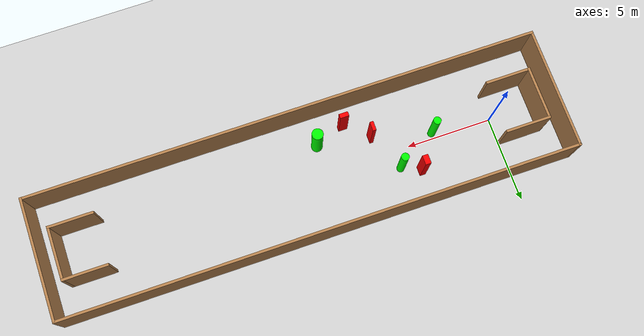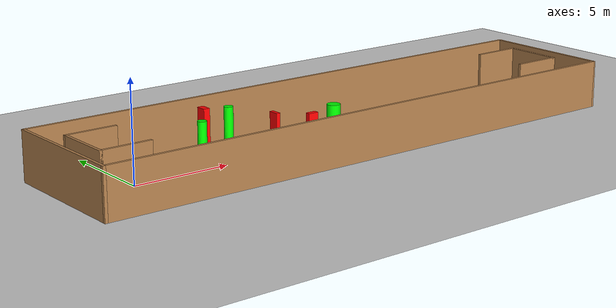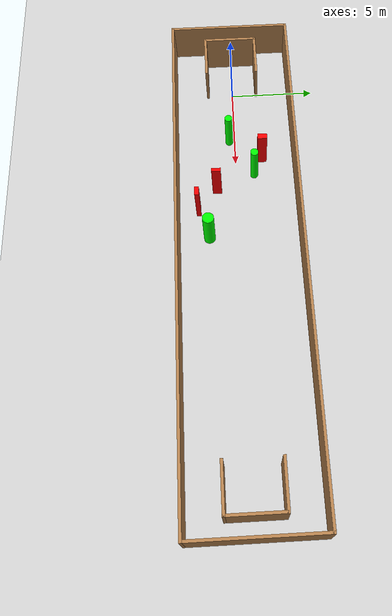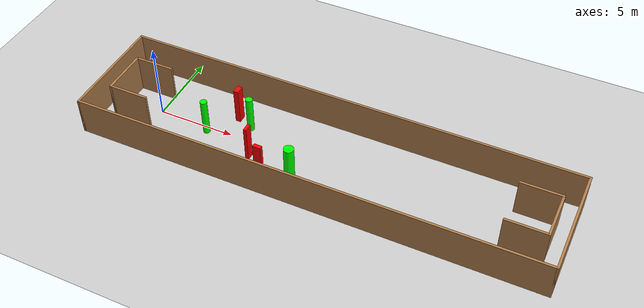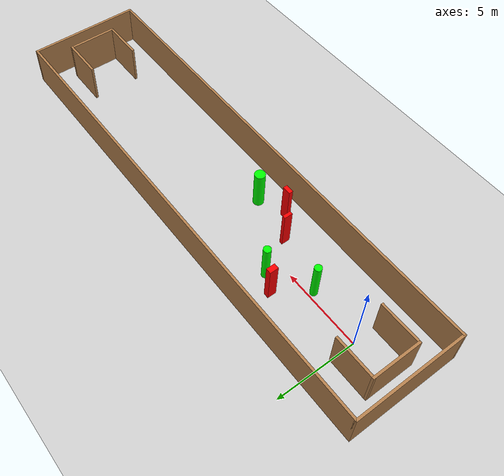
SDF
<sdf version="1.7">
 <world name="default">
  <light name="sun" type="directional">
   <pose>0 0 10 0 -0 0</pose>
   <diffuse>0.8 0.8 0.8 1</diffuse>
   <specular>0.2 0.2 0.2 1</specular>
   <attenuation>
    <range>1000</range>
    <constant>0.9</constant>
    <linear>0.01</linear>
    <quadratic>0.001</quadratic>
   </attenuation>
   <direction>-0.5 0.1 -0.9</direction>
   <spot><inner_angle>0</inner_angle><outer_angle>0</outer_angle><falloff>0</falloff></spot>
  </light>
  <model name="ground_plane">
   <static>1</static>
   <link name="link">
    <collision name="collision">
     <geometry><plane><normal>0 0 1</normal><size>100 100</size></plane></geometry>
     <surface>
      <contact><collide_bitmask>65535</collide_bitmask></contact>
      <friction><ode><mu>100</mu><mu2>50</mu2></ode></friction>
     </surface>
    </collision>
    <visual name="visual">
     <cast_shadows>0</cast_shadows>
     <geometry><plane><normal>0 0 1</normal><size>100 100</size></plane></geometry>
     <material>
      <script><uri>file://media/materials/scripts/gazebo.material</uri><name>Gazebo/Grey</name></script>
     </material>
    </visual>
   </link>
  </model>
  <gravity>0 0 -9.8</gravity>
  <magnetic_field>6e-06 2.3e-05 -4.2e-05</magnetic_field>
  <atmosphere type="adiabatic"/>
  <physics type="ode">
   <max_step_size>0.001</max_step_size>
   <real_time_factor>1</real_time_factor>
   <real_time_update_rate>1000</real_time_update_rate>
  </physics>
  <scene><ambient>0.4 0.4 0.4 1</ambient><background>0.7 0.7 0.7 1</background><shadows>1</shadows></scene>
  <spherical_coordinates>
   <surface_model>EARTH_WGS84</surface_model>
   <latitude_deg>0</latitude_deg>
   <longitude_deg>0</longitude_deg>
   <elevation>0</elevation>
   <heading_deg>0</heading_deg>
  </spherical_coordinates>
  <model name="my_base_walls">
   <link name="Wall_0">
    <collision name="Wall_0_Collision">
     <geometry><box><size>7.15 0.15 2.5</size></box></geometry>
     <pose>0 0 1.25 0 -0 0</pose>
    </collision>
    <visual name="Wall_0_Visual">
     <pose>0 0 1.25 0 -0 0</pose>
     <geometry><box><size>7.15 0.15 2.5</size></box></geometry>
     <material>
      <script><uri>file://media/materials/scripts/gazebo.material</uri><name>Gazebo/Wood</name></script>
      <ambient>1 1 1 1</ambient>
     </material>
     <meta><layer>0</layer></meta>
    </visual>
    <pose>-15 0 0 0 -0 1.5708</pose>
   </link>
   <link name="Wall_10">
    <collision name="Wall_10_Collision">
     <geometry><box><size>2.65 0.15 2.5</size></box></geometry>
     <pose>0 0 1.25 0 -0 0</pose>
    </collision>
    <visual name="Wall_10_Visual">
     <pose>0 0 1.25 0 -0 0</pose>
     <geometry><box><size>2.65 0.15 2.5</size></box></geometry>
     <material>
      <script><uri>file://media/materials/scripts/gazebo.material</uri><name>Gazebo/Wood</name></script>
      <ambient>1 1 1 1</ambient>
     </material>
     <meta><layer>0</layer></meta>
    </visual>
    <pose>-12.75 -1.5 0 0 -0 0</pose>
   </link>
   <link name="Wall_12">
    <collision name="Wall_12_Collision">
     <geometry><box><size>2.65 0.15 2.5</size></box></geometry>
     <pose>0 0 1.25 0 -0 0</pose>
    </collision>
    <visual name="Wall_12_Visual">
     <pose>0 0 1.25 0 -0 0</pose>
     <geometry><box><size>2.65 0.15 2.5</size></box></geometry>
     <material>
      <script><uri>file://media/materials/scripts/gazebo.material</uri><name>Gazebo/Wood</name></script>
      <ambient>1 1 1 1</ambient>
     </material>
     <meta><layer>0</layer></meta>
    </visual>
    <pose>-12.75 1.5 0 0 -0 0</pose>
   </link>
   <link name="Wall_14">
    <collision name="Wall_14_Collision">
     <geometry><box><size>3.15 0.15 2.5</size></box></geometry>
     <pose>0 0 1.25 0 -0 0</pose>
    </collision>
    <visual name="Wall_14_Visual">
     <pose>0 0 1.25 0 -0 0</pose>
     <geometry><box><size>3.15 0.15 2.5</size></box></geometry>
     <material>
      <script><uri>file://media/materials/scripts/gazebo.material</uri><name>Gazebo/Wood</name></script>
      <ambient>1 1 1 1</ambient>
     </material>
     <meta><layer>0</layer></meta>
    </visual>
    <pose>14 0 0 0 -0 -1.5708</pose>
   </link>
   <link name="Wall_15">
    <collision name="Wall_15_Collision">
     <geometry><box><size>2.65 0.15 2.5</size></box></geometry>
     <pose>0 0 1.25 0 -0 0</pose>
    </collision>
    <visual name="Wall_15_Visual">
     <pose>0 0 1.25 0 -0 0</pose>
     <geometry><box><size>2.65 0.15 2.5</size></box></geometry>
     <material>
      <script><uri>file://media/materials/scripts/gazebo.material</uri><name>Gazebo/Wood</name></script>
      <ambient>1 1 1 1</ambient>
     </material>
     <meta><layer>0</layer></meta>
    </visual>
    <pose>12.75 -1.5 0 0 -0 3.14159</pose>
   </link>
   <link name="Wall_17">
    <collision name="Wall_17_Collision">
     <geometry><box><size>2.65 0.15 2.5</size></box></geometry>
     <pose>0 0 1.25 0 -0 0</pose>
    </collision>
    <visual name="Wall_17_Visual">
     <pose>0 0 1.25 0 -0 0</pose>
     <geometry><box><size>2.65 0.15 2.5</size></box></geometry>
     <material>
      <script><uri>file://media/materials/scripts/gazebo.material</uri><name>Gazebo/Wood</name></script>
      <ambient>1 1 1 1</ambient>
     </material>
     <meta><layer>0</layer></meta>
    </visual>
    <pose>12.75 1.5 0 0 -0 3.14159</pose>
   </link>
   <link name="Wall_2">
    <collision name="Wall_2_Collision">
     <geometry><box><size>30.15 0.15 2.5</size></box></geometry>
     <pose>0 0 1.25 0 -0 0</pose>
    </collision>
    <visual name="Wall_2_Visual">
     <pose>0 0 1.25 0 -0 0</pose>
     <geometry><box><size>30.15 0.15 2.5</size></box></geometry>
     <material>
      <script><uri>file://media/materials/scripts/gazebo.material</uri><name>Gazebo/Wood</name></script>
      <ambient>1 1 1 1</ambient>
     </material>
     <meta><layer>0</layer></meta>
    </visual>
    <pose>-0 -3.5 0 0 -0 0</pose>
   </link>
   <link name="Wall_4">
    <collision name="Wall_4_Collision">
     <geometry><box><size>30.15 0.15 2.5</size></box></geometry>
     <pose>0 0 1.25 0 -0 0</pose>
    </collision>
    <visual name="Wall_4_Visual">
     <pose>0 0 1.25 0 -0 0</pose>
     <geometry><box><size>30.15 0.15 2.5</size></box></geometry>
     <material>
      <script><uri>file://media/materials/scripts/gazebo.material</uri><name>Gazebo/Wood</name></script>
      <ambient>1 1 1 1</ambient>
     </material>
     <meta><layer>0</layer></meta>
    </visual>
    <pose>-0 3.5 0 0 -0 0</pose>
   </link>
   <link name="Wall_6">
    <collision name="Wall_6_Collision">
     <geometry><box><size>7.15 0.15 2.5</size></box></geometry>
     <pose>0 0 1.25 0 -0 0</pose>
    </collision>
    <visual name="Wall_6_Visual">
     <pose>0 0 1.25 0 -0 0</pose>
     <geometry><box><size>7.15 0.15 2.5</size></box></geometry>
     <material>
      <script><uri>file://media/materials/scripts/gazebo.material</uri><name>Gazebo/Wood</name></script>
      <ambient>1 1 1 1</ambient>
     </material>
     <meta><layer>0</layer></meta>
    </visual>
    <pose>15 0 0 0 -0 -1.5708</pose>
   </link>
   <link name="Wall_9">
    <collision name="Wall_9_Collision">
     <geometry><box><size>3.15 0.15 2.5</size></box></geometry>
     <pose>0 0 1.25 0 -0 0</pose>
    </collision>
    <visual name="Wall_9_Visual">
     <pose>0 0 1.25 0 -0 0</pose>
     <geometry><box><size>3.15 0.15 2.5</size></box></geometry>
     <material>
      <script><uri>file://media/materials/scripts/gazebo.material</uri><name>Gazebo/Wood</name></script>
      <ambient>1 1 1 1</ambient>
     </material>
     <meta><layer>0</layer></meta>
    </visual>
    <pose>-14 0 0 0 -0 -1.5708</pose>
   </link>
   <static>1</static>
   <pose>11.5 0 0 0 -0 0</pose>
  </model>
  <model name="cylinder1">
   <static>1</static>
   <link name="link">
    <inertial>
     <mass>1</mass>
     <inertia><ixx>0.5</ixx><ixy>0</ixy><ixz>0</ixz><iyy>0.5</iyy><iyz>0</iyz><izz>1</izz></inertia>
    </inertial>
    <collision name="collision">
     <geometry><cylinder><radius>0.32674089813096363</radius><length>2.5</length></cylinder></geometry>
    </collision>
    <visual name="visual">
     <geometry><cylinder><radius>0.32674089813096363</radius><length>2.5</length></cylinder></geometry>
     <material>
      <ambient>0 1 0 1</ambient>
      <diffuse>0 1 0 1</diffuse>
      <specular>0.1 0.1 0.1 1</specular>
      <emissive>0 0 0 0</emissive>
     </material>
    </visual>
   </link>
   <pose>10.027750545048077 -1.7325777463853105 1.25 0 0 0</pose>
  </model>
  <model name="cylinder2">
   <static>1</static>
   <link name="link">
    <inertial>
     <mass>1</mass>
     <inertia><ixx>0.5</ixx><ixy>0</ixy><ixz>0</ixz><iyy>0.5</iyy><iyz>0</iyz><izz>1</izz></inertia>
    </inertial>
    <collision name="collision">
     <geometry><cylinder><radius>0.22819537812433066</radius><length>2.5</length></cylinder></geometry>
    </collision>
    <visual name="visual">
     <geometry><cylinder><radius>0.22819537812433066</radius><length>2.5</length></cylinder></geometry>
     <material>
      <ambient>0 1 0 1</ambient>
      <diffuse>0 1 0 1</diffuse>
      <specular>0.1 0.1 0.1 1</specular>
      <emissive>0 0 0 0</emissive>
     </material>
    </visual>
   </link>
   <pose>5.890169081735259 1.0566498256185133 1.25 0 0 0</pose>
  </model>
  <model name="cylinder3">
   <static>1</static>
   <link name="link">
    <inertial>
     <mass>1</mass>
     <inertia><ixx>0.5</ixx><ixy>0</ixy><ixz>0</ixz><iyy>0.5</iyy><iyz>0</iyz><izz>1</izz></inertia>
    </inertial>
    <collision name="collision">
     <geometry><cylinder><radius>0.2209398637411959</radius><length>2.5</length></cylinder></geometry>
    </collision>
    <visual name="visual">
     <geometry><cylinder><radius>0.2209398637411959</radius><length>2.5</length></cylinder></geometry>
     <material>
      <ambient>0 1 0 1</ambient>
      <diffuse>0 1 0 1</diffuse>
      <specular>0.1 0.1 0.1 1</specular>
      <emissive>0 0 0 0</emissive>
     </material>
    </visual>
   </link>
   <pose>3.471237865588149 -0.3295246313724327 1.25 0 0 0</pose>
  </model>
  <model name="box1">
   <static>1</static>
   <link name="link">
    <inertial>
     <mass>1</mass>
     <inertia><ixx>0.083</ixx><ixy>0</ixy><ixz>0</ixz><iyy>0.083</iyy><iyz>0</iyz><izz>0.083</izz></inertia>
    </inertial>
    <collision name="collision">
     <geometry><box><size>0.3317004663305295 0.5442268217654145 2.5</size></box></geometry>
    </collision>
    <visual name="visual">
     <geometry><box><size>0.3317004663305295 0.5442268217654145 2.5</size></box></geometry>
     <material>
      <ambient>1 0 0 1</ambient>
      <diffuse>1 0 0 1</diffuse>
      <specular>0.1 0.1 0.1 1</specular>
      <emissive>0 0 0 0</emissive>
     </material>
    </visual>
    <sensor name="my_contact" type="contact">
     <contact><collision>box_collision</collision><topic>__default_topic__</topic></contact>
    </sensor>
   </link>
   <pose>4.826385311353139 1.5754800278976884 1.25 0 0 0</pose>
  </model>
  <model name="box2">
   <static>1</static>
   <link name="link">
    <inertial>
     <mass>1</mass>
     <inertia><ixx>0.083</ixx><ixy>0</ixy><ixz>0</ixz><iyy>0.083</iyy><iyz>0</iyz><izz>0.083</izz></inertia>
    </inertial>
    <collision name="collision">
     <geometry><box><size>0.521126952034354 0.2535773851308885 2.5</size></box></geometry>
    </collision>
    <visual name="visual">
     <geometry><box><size>0.521126952034354 0.2535773851308885 2.5</size></box></geometry>
     <material>
      <ambient>1 0 0 1</ambient>
      <diffuse>1 0 0 1</diffuse>
      <specular>0.1 0.1 0.1 1</specular>
      <emissive>0 0 0 0</emissive>
     </material>
    </visual>
    <sensor name="my_contact" type="contact">
     <contact><collision>box_collision</collision><topic>__default_topic__</topic></contact>
    </sensor>
   </link>
   <pose>8.271303077997718 -2.311412600269255 1.25 0 0 0</pose>
  </model>
  <model name="box3">
   <static>1</static>
   <link name="link">
    <inertial>
     <mass>1</mass>
     <inertia><ixx>0.083</ixx><ixy>0</ixy><ixz>0</ixz><iyy>0.083</iyy><iyz>0</iyz><izz>0.083</izz></inertia>
    </inertial>
    <collision name="collision">
     <geometry><box><size>0.20467756311007224 0.5331447825390777 2.5</size></box></geometry>
    </collision>
    <visual name="visual">
     <geometry><box><size>0.20467756311007224 0.5331447825390777 2.5</size></box></geometry>
     <material>
      <ambient>1 0 0 1</ambient>
      <diffuse>1 0 0 1</diffuse>
      <specular>0.1 0.1 0.1 1</specular>
      <emissive>0 0 0 0</emissive>
     </material>
    </visual>
    <sensor name="my_contact" type="contact">
     <contact><collision>box_collision</collision><topic>__default_topic__</topic></contact>
    </sensor>
   </link>
   <pose>6.962378596887861 -1.1854242221673723 1.25 0 0 0</pose>
  </model>
 </world>
</sdf>
